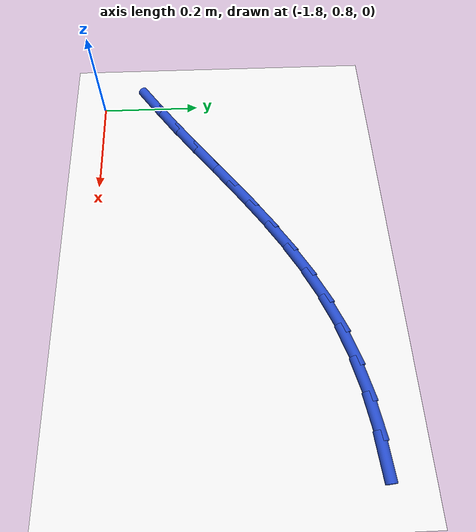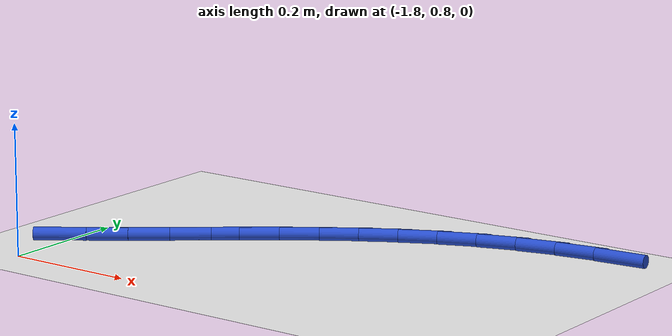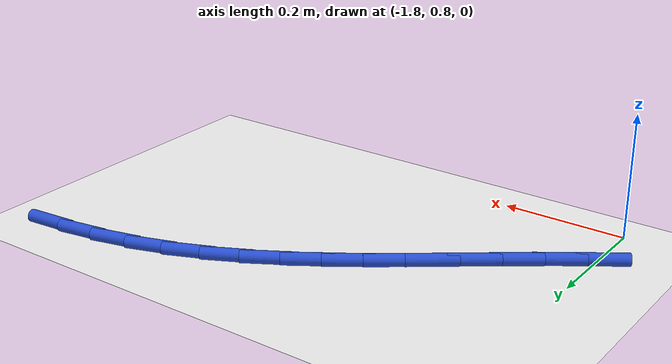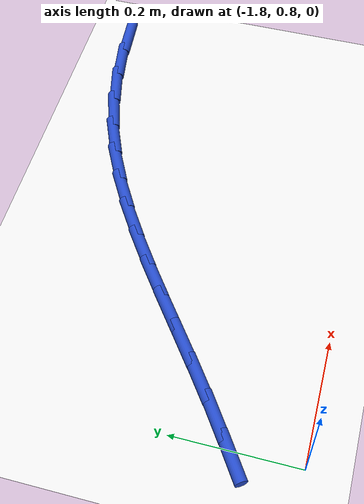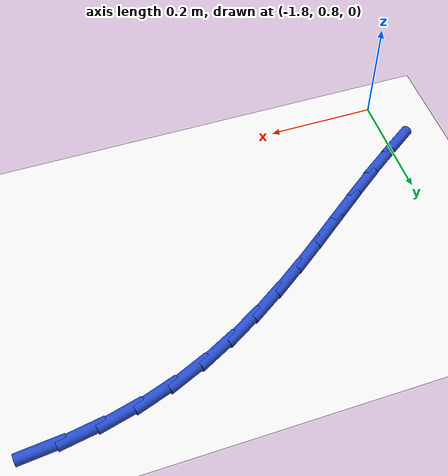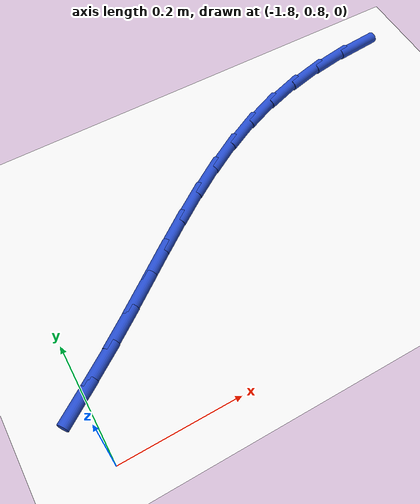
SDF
<sdf version="1.6">
 <world name="default">
  <model name="ground_plane">
   <static>1</static>
   <link name="link">
    <collision name="collision">
     <geometry><plane><normal>0 0 1</normal><size>100 100</size></plane></geometry>
     <surface><friction><ode><mu>100</mu><mu2>50</mu2></ode></friction></surface>
    </collision>
    <visual name="visual">
     <cast_shadows>0</cast_shadows>
     <geometry><plane><normal>0 0 1</normal><size>100 100</size></plane></geometry>
     <material>
      <script><uri>file://media/materials/scripts/gazebo.material</uri><name>Gazebo/WhiteGlow</name></script>
     </material>
    </visual>
   </link>
  </model>
  <model name="line">
   <link name="link_30">
    <pose>-1.0640111357452997 1.2875225343780734 0.01 0 1.57 0.08821559345046542</pose>
    <collision name="collision">
     <geometry><cylinder><radius>0.01</radius><length>0.08</length></cylinder></geometry>
    </collision>
    <visual name="visual">
     <material>
      <script><name>Gazebo/Blue</name><uri>file://media/materials/scripts/gazebo.material</uri></script>
     </material>
     <geometry><cylinder><radius>0.01</radius><length>0.08</length></cylinder></geometry>
    </visual>
   </link>
   <link name="link_31">
    <pose>-1.1265747769241632 1.2819890844384065 0.01 0 1.57 0.16262840044098104</pose>
    <collision name="collision">
     <geometry><cylinder><radius>0.01</radius><length>0.08</length></cylinder></geometry>
    </collision>
    <visual name="visual">
     <material>
      <script><name>Gazebo/Blue</name><uri>file://media/materials/scripts/gazebo.material</uri></script>
     </material>
     <geometry><cylinder><radius>0.01</radius><length>0.08</length></cylinder></geometry>
    </visual>
   </link>
   <link name="link_32">
    <pose>-1.1879147076778533 1.2719245841521563 0.01 0 1.57 0.24077593268263056</pose>
    <collision name="collision">
     <geometry><cylinder><radius>0.01</radius><length>0.08</length></cylinder></geometry>
    </collision>
    <visual name="visual">
     <material>
      <script><name>Gazebo/Blue</name><uri>file://media/materials/scripts/gazebo.material</uri></script>
     </material>
     <geometry><cylinder><radius>0.01</radius><length>0.08</length></cylinder></geometry>
    </visual>
   </link>
   <link name="link_33">
    <pose>-1.2474958329458004 1.257295078775939 0.01 0 1.57 0.32373348171885286</pose>
    <collision name="collision">
     <geometry><cylinder><radius>0.01</radius><length>0.08</length></cylinder></geometry>
    </collision>
    <visual name="visual">
     <material>
      <script><name>Gazebo/Blue</name><uri>file://media/materials/scripts/gazebo.material</uri></script>
     </material>
     <geometry><cylinder><radius>0.01</radius><length>0.08</length></cylinder></geometry>
    </visual>
   </link>
   <link name="link_34">
    <pose>-1.304789452356231 1.238070889666976 0.01 0 1.57 0.40649639010182537</pose>
    <collision name="collision">
     <geometry><cylinder><radius>0.01</radius><length>0.08</length></cylinder></geometry>
    </collision>
    <visual name="visual">
     <material>
      <script><name>Gazebo/Blue</name><uri>file://media/materials/scripts/gazebo.material</uri></script>
     </material>
     <geometry><cylinder><radius>0.01</radius><length>0.08</length></cylinder></geometry>
    </visual>
   </link>
   <link name="link_35">
    <pose>-1.3596285455366361 1.2144641920260657 0.01 0 1.57 0.47910355039656916</pose>
    <collision name="collision">
     <geometry><cylinder><radius>0.01</radius><length>0.08</length></cylinder></geometry>
    </collision>
    <visual name="visual">
     <material>
      <script><name>Gazebo/Blue</name><uri>file://media/materials/scripts/gazebo.material</uri></script>
     </material>
     <geometry><cylinder><radius>0.01</radius><length>0.08</length></cylinder></geometry>
    </visual>
   </link>
   <link name="link_36">
    <pose>-1.4123943985220178 1.1870538111656614 0.01 0 1.57 0.5394530271187781</pose>
    <collision name="collision">
     <geometry><cylinder><radius>0.01</radius><length>0.08</length></cylinder></geometry>
    </collision>
    <visual name="visual">
     <material>
      <script><name>Gazebo/Blue</name><uri>file://media/materials/scripts/gazebo.material</uri></script>
     </material>
     <geometry><cylinder><radius>0.01</radius><length>0.08</length></cylinder></geometry>
    </visual>
   </link>
   <link name="link_37">
    <pose>-1.4635140548989432 1.156449170274078 0.01 0 1.57 0.5869262757252178</pose>
    <collision name="collision">
     <geometry><cylinder><radius>0.01</radius><length>0.08</length></cylinder></geometry>
    </collision>
    <visual name="visual">
     <material>
      <script><name>Gazebo/Blue</name><uri>file://media/materials/scripts/gazebo.material</uri></script>
     </material>
     <geometry><cylinder><radius>0.01</radius><length>0.08</length></cylinder></geometry>
    </visual>
   </link>
   <link name="link_38">
    <pose>-1.51341455825398 1.1232596925396305 0.01 0 1.57 0.6214278724742768</pose>
    <collision name="collision">
     <geometry><cylinder><radius>0.01</radius><length>0.08</length></cylinder></geometry>
    </collision>
    <visual name="visual">
     <material>
      <script><name>Gazebo/Blue</name><uri>file://media/materials/scripts/gazebo.material</uri></script>
     </material>
     <geometry><cylinder><radius>0.01</radius><length>0.08</length></cylinder></geometry>
    </visual>
   </link>
   <link name="link_39">
    <pose>-1.5625229521736945 1.0880948011506324 0.01 0 1.57 0.6431515727244548</pose>
    <collision name="collision">
     <geometry><cylinder><radius>0.01</radius><length>0.08</length></cylinder></geometry>
    </collision>
    <visual name="visual">
     <material>
      <script><name>Gazebo/Blue</name><uri>file://media/materials/scripts/gazebo.material</uri></script>
     </material>
     <geometry><cylinder><radius>0.01</radius><length>0.08</length></cylinder></geometry>
    </visual>
   </link>
   <link name="link_40">
    <pose>-1.6112662802446536 1.0515639192953985 0.01 0 1.57 0.6524035937957937</pose>
    <collision name="collision">
     <geometry><cylinder><radius>0.01</radius><length>0.08</length></cylinder></geometry>
    </collision>
    <visual name="visual">
     <material>
      <script><name>Gazebo/Blue</name><uri>file://media/materials/scripts/gazebo.material</uri></script>
     </material>
     <geometry><cylinder><radius>0.01</radius><length>0.08</length></cylinder></geometry>
    </visual>
   </link>
   <link name="link_41">
    <pose>-1.6600715860534248 1.0142764701622429 0.01 0 1.57 0.6494962061803301</pose>
    <collision name="collision">
     <geometry><cylinder><radius>0.01</radius><length>0.08</length></cylinder></geometry>
    </collision>
    <visual name="visual">
     <material>
      <script><name>Gazebo/Blue</name><uri>file://media/materials/scripts/gazebo.material</uri></script>
     </material>
     <geometry><cylinder><radius>0.01</radius><length>0.08</length></cylinder></geometry>
    </visual>
   </link>
   <link name="link_42">
    <pose>-1.7093659131865757 0.9768418769394811 0.01 0 1.57 0.6347063242125209</pose>
    <collision name="collision">
     <geometry><cylinder><radius>0.01</radius><length>0.08</length></cylinder></geometry>
    </collision>
    <visual name="visual">
     <material>
      <script><name>Gazebo/Blue</name><uri>file://media/materials/scripts/gazebo.material</uri></script>
     </material>
     <geometry><cylinder><radius>0.01</radius><length>0.08</length></cylinder></geometry>
    </visual>
   </link>
   <link name="link_43">
    <pose>-1.7595763052306732 0.9398695628154266 0.01 0 1.57 0.6121601990844545</pose>
    <collision name="collision">
     <geometry><cylinder><radius>0.01</radius><length>0.08</length></cylinder></geometry>
    </collision>
    <visual name="visual">
     <material>
      <script><name>Gazebo/Blue</name><uri>file://media/materials/scripts/gazebo.material</uri></script>
     </material>
     <geometry><cylinder><radius>0.01</radius><length>0.08</length></cylinder></geometry>
    </visual>
   </link>
   <link name="link_44">
    <pose>-1.8109475609893544 0.9037997925104377 0.01 0 1.57 0.6009287466882238</pose>
    <collision name="collision">
     <geometry><cylinder><radius>0.01</radius><length>0.08</length></cylinder></geometry>
    </collision>
    <visual name="visual">
     <material>
      <script><name>Gazebo/Blue</name><uri>file://media/materials/scripts/gazebo.material</uri></script>
     </material>
     <geometry><cylinder><radius>0.01</radius><length>0.08</length></cylinder></geometry>
    </visual>
   </link>
  </model>
 </world>
</sdf>
